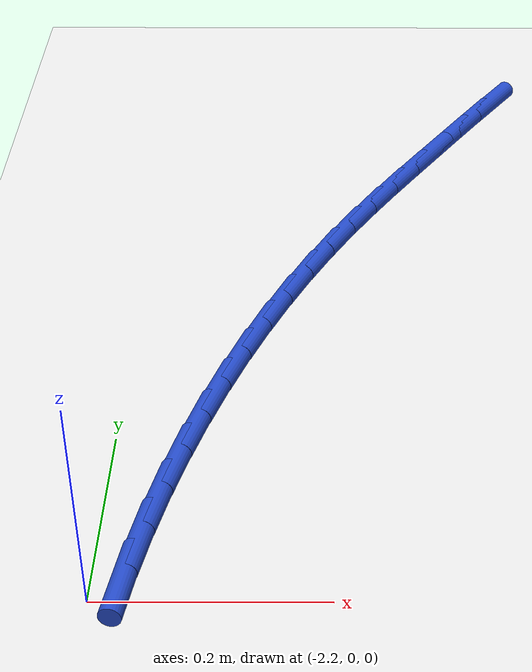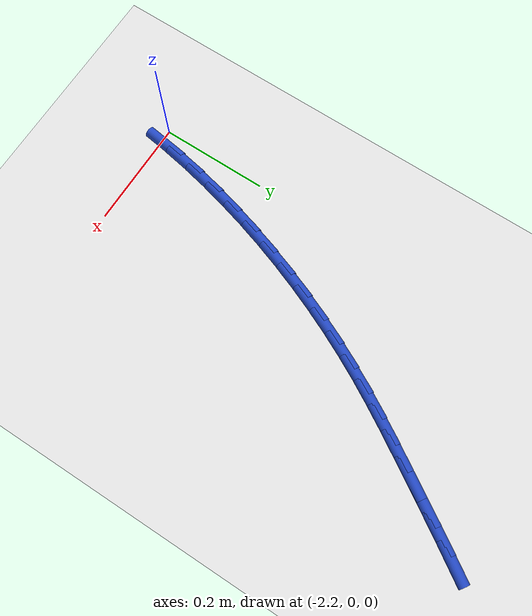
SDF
<sdf version="1.6">
 <world name="default">
  <model name="ground_plane">
   <static>1</static>
   <link name="link">
    <collision name="collision">
     <geometry><plane><normal>0 0 1</normal><size>100 100</size></plane></geometry>
     <surface><friction><ode><mu>100</mu><mu2>50</mu2></ode></friction></surface>
    </collision>
    <visual name="visual">
     <cast_shadows>0</cast_shadows>
     <geometry><plane><normal>0 0 1</normal><size>100 100</size></plane></geometry>
     <material>
      <script><uri>file://media/materials/scripts/gazebo.material</uri><name>Gazebo/WhiteGlow</name></script>
     </material>
    </visual>
   </link>
  </model>
  <model name="line">
   <link name="link_55">
    <pose>-1.8172623279742086 0.8184753226041613 0.01 0 1.57 0.9942015931221642</pose>
    <collision name="collision">
     <geometry><cylinder><radius>0.01</radius><length>0.08</length></cylinder></geometry>
    </collision>
    <visual name="visual">
     <material>
      <script><name>Gazebo/Blue</name><uri>file://media/materials/scripts/gazebo.material</uri></script>
     </material>
     <geometry><cylinder><radius>0.01</radius><length>0.08</length></cylinder></geometry>
    </visual>
   </link>
   <link name="link_56">
    <pose>-1.8443573446850496 0.7768106998826098 0.01 0 1.57 1.0073650396837266</pose>
    <collision name="collision">
     <geometry><cylinder><radius>0.01</radius><length>0.08</length></cylinder></geometry>
    </collision>
    <visual name="visual">
     <material>
      <script><name>Gazebo/Blue</name><uri>file://media/materials/scripts/gazebo.material</uri></script>
     </material>
     <geometry><cylinder><radius>0.01</radius><length>0.08</length></cylinder></geometry>
    </visual>
   </link>
   <link name="link_57">
    <pose>-1.8707465012257043 0.7350385118360343 0.01 0 1.57 1.011478258368274</pose>
    <collision name="collision">
     <geometry><cylinder><radius>0.01</radius><length>0.08</length></cylinder></geometry>
    </collision>
    <visual name="visual">
     <material>
      <script><name>Gazebo/Blue</name><uri>file://media/materials/scripts/gazebo.material</uri></script>
     </material>
     <geometry><cylinder><radius>0.01</radius><length>0.08</length></cylinder></geometry>
    </visual>
   </link>
   <link name="link_58">
    <pose>-1.8966389118653497 0.6936768312107244 0.01 0 1.57 1.0118130993334504</pose>
    <collision name="collision">
     <geometry><cylinder><radius>0.01</radius><length>0.08</length></cylinder></geometry>
    </collision>
    <visual name="visual">
     <material>
      <script><name>Gazebo/Blue</name><uri>file://media/materials/scripts/gazebo.material</uri></script>
     </material>
     <geometry><cylinder><radius>0.01</radius><length>0.08</length></cylinder></geometry>
    </visual>
   </link>
   <link name="link_59">
    <pose>-1.922128491251638 0.6529283201082964 0.01 0 1.57 1.019064442676933</pose>
    <collision name="collision">
     <geometry><cylinder><radius>0.01</radius><length>0.08</length></cylinder></geometry>
    </collision>
    <visual name="visual">
     <material>
      <script><name>Gazebo/Blue</name><uri>file://media/materials/scripts/gazebo.material</uri></script>
     </material>
     <geometry><cylinder><radius>0.01</radius><length>0.08</length></cylinder></geometry>
    </visual>
   </link>
   <link name="link_60">
    <pose>-1.947084784806442 0.6123813292184679 0.01 0 1.57 1.0345307797100867</pose>
    <collision name="collision">
     <geometry><cylinder><radius>0.01</radius><length>0.08</length></cylinder></geometry>
    </collision>
    <visual name="visual">
     <material>
      <script><name>Gazebo/Blue</name><uri>file://media/materials/scripts/gazebo.material</uri></script>
     </material>
     <geometry><cylinder><radius>0.01</radius><length>0.08</length></cylinder></geometry>
    </visual>
   </link>
   <link name="link_61">
    <pose>-1.9713514705967723 0.5715533857424329 0.01 0 1.57 1.0579392164853803</pose>
    <collision name="collision">
     <geometry><cylinder><radius>0.01</radius><length>0.08</length></cylinder></geometry>
    </collision>
    <visual name="visual">
     <material>
      <script><name>Gazebo/Blue</name><uri>file://media/materials/scripts/gazebo.material</uri></script>
     </material>
     <geometry><cylinder><radius>0.01</radius><length>0.08</length></cylinder></geometry>
    </visual>
   </link>
   <link name="link_62">
    <pose>-1.99477222668964 0.5299620168813848 0.01 0 1.57 1.0875519977489114</pose>
    <collision name="collision">
     <geometry><cylinder><radius>0.01</radius><length>0.08</length></cylinder></geometry>
    </collision>
    <visual name="visual">
     <material>
      <script><name>Gazebo/Blue</name><uri>file://media/materials/scripts/gazebo.material</uri></script>
     </material>
     <geometry><cylinder><radius>0.01</radius><length>0.08</length></cylinder></geometry>
    </visual>
   </link>
   <link name="link_63">
    <pose>-2.0172044860335365 0.4872128544320055 0.01 0 1.57 1.1180129916207924</pose>
    <collision name="collision">
     <geometry><cylinder><radius>0.01</radius><length>0.08</length></cylinder></geometry>
    </collision>
    <visual name="visual">
     <material>
      <script><name>Gazebo/Blue</name><uri>file://media/materials/scripts/gazebo.material</uri></script>
     </material>
     <geometry><cylinder><radius>0.01</radius><length>0.08</length></cylinder></geometry>
    </visual>
   </link>
   <link name="link_64">
    <pose>-2.0385666770933537 0.4433022267815781 0.01 0 1.57 1.1480889474235125</pose>
    <collision name="collision">
     <geometry><cylinder><radius>0.01</radius><length>0.08</length></cylinder></geometry>
    </collision>
    <visual name="visual">
     <material>
      <script><name>Gazebo/Blue</name><uri>file://media/materials/scripts/gazebo.material</uri></script>
     </material>
     <geometry><cylinder><radius>0.01</radius><length>0.08</length></cylinder></geometry>
    </visual>
   </link>
   <link name="link_65">
    <pose>-2.0587941299949777 0.39833472308336537 0.01 0 1.57 1.177958827189347</pose>
    <collision name="collision">
     <geometry><cylinder><radius>0.01</radius><length>0.08</length></cylinder></geometry>
    </collision>
    <visual name="visual">
     <material>
      <script><name>Gazebo/Blue</name><uri>file://media/materials/scripts/gazebo.material</uri></script>
     </material>
     <geometry><cylinder><radius>0.01</radius><length>0.08</length></cylinder></geometry>
    </visual>
   </link>
   <link name="link_66">
    <pose>-2.077822175483266 0.35241493645534117 0.01 0 1.57 1.2077926753106254</pose>
    <collision name="collision">
     <geometry><cylinder><radius>0.01</radius><length>0.08</length></cylinder></geometry>
    </collision>
    <visual name="visual">
     <material>
      <script><name>Gazebo/Blue</name><uri>file://media/materials/scripts/gazebo.material</uri></script>
     </material>
     <geometry><cylinder><radius>0.01</radius><length>0.08</length></cylinder></geometry>
    </visual>
   </link>
   <link name="link_67">
    <pose>-2.0955861443030774 0.30564746001547904 0.01 0 1.57 1.2377539954151593</pose>
    <collision name="collision">
     <geometry><cylinder><radius>0.01</radius><length>0.08</length></cylinder></geometry>
    </collision>
    <visual name="visual">
     <material>
      <script><name>Gazebo/Blue</name><uri>file://media/materials/scripts/gazebo.material</uri></script>
     </material>
     <geometry><cylinder><radius>0.01</radius><length>0.08</length></cylinder></geometry>
    </visual>
   </link>
   <link name="link_68">
    <pose>-2.112021367199268 0.2581368868817535 0.01 0 1.57 1.2680018801175619</pose>
    <collision name="collision">
     <geometry><cylinder><radius>0.01</radius><length>0.08</length></cylinder></geometry>
    </collision>
    <visual name="visual">
     <material>
      <script><name>Gazebo/Blue</name><uri>file://media/materials/scripts/gazebo.material</uri></script>
     </material>
     <geometry><cylinder><radius>0.01</radius><length>0.08</length></cylinder></geometry>
    </visual>
   </link>
   <link name="link_69">
    <pose>-2.1270631749166946 0.2099878101721384 0.01 0 1.57 1.2986928693248518</pose>
    <collision name="collision">
     <geometry><cylinder><radius>0.01</radius><length>0.08</length></cylinder></geometry>
    </collision>
    <visual name="visual">
     <material>
      <script><name>Gazebo/Blue</name><uri>file://media/materials/scripts/gazebo.material</uri></script>
     </material>
     <geometry><cylinder><radius>0.01</radius><length>0.08</length></cylinder></geometry>
    </visual>
   </link>
   <link name="link_70">
    <pose>-2.1406468982002163 0.1613048230046074 0.01 0 1.57 1.329982549413675</pose>
    <collision name="collision">
     <geometry><cylinder><radius>0.01</radius><length>0.08</length></cylinder></geometry>
    </collision>
    <visual name="visual">
     <material>
      <script><name>Gazebo/Blue</name><uri>file://media/materials/scripts/gazebo.material</uri></script>
     </material>
     <geometry><cylinder><radius>0.01</radius><length>0.08</length></cylinder></geometry>
    </visual>
   </link>
   <link name="link_71">
    <pose>-2.152707867794689 0.11219251849713398 0.01 0 1.57 1.3620268903621573</pose>
    <collision name="collision">
     <geometry><cylinder><radius>0.01</radius><length>0.08</length></cylinder></geometry>
    </collision>
    <visual name="visual">
     <material>
      <script><name>Gazebo/Blue</name><uri>file://media/materials/scripts/gazebo.material</uri></script>
     </material>
     <geometry><cylinder><radius>0.01</radius><length>0.08</length></cylinder></geometry>
    </visual>
   </link>
   <link name="link_72">
    <pose>-2.16318141444497 0.06275548976769285 0.01 0 1.57 1.3949833001123526</pose>
    <collision name="collision">
     <geometry><cylinder><radius>0.01</radius><length>0.08</length></cylinder></geometry>
    </collision>
    <visual name="visual">
     <material>
      <script><name>Gazebo/Blue</name><uri>file://media/materials/scripts/gazebo.material</uri></script>
     </material>
     <geometry><cylinder><radius>0.01</radius><length>0.08</length></cylinder></geometry>
    </visual>
   </link>
   <link name="link_73">
    <pose>-2.172002868895918 0.013098329934257656 0.01 0 1.57 1.429011354672205</pose>
    <collision name="collision">
     <geometry><cylinder><radius>0.01</radius><length>0.08</length></cylinder></geometry>
    </collision>
    <visual name="visual">
     <material>
      <script><name>Gazebo/Blue</name><uri>file://media/materials/scripts/gazebo.material</uri></script>
     </material>
     <geometry><cylinder><radius>0.01</radius><length>0.08</length></cylinder></geometry>
    </visual>
   </link>
  </model>
 </world>
</sdf>
